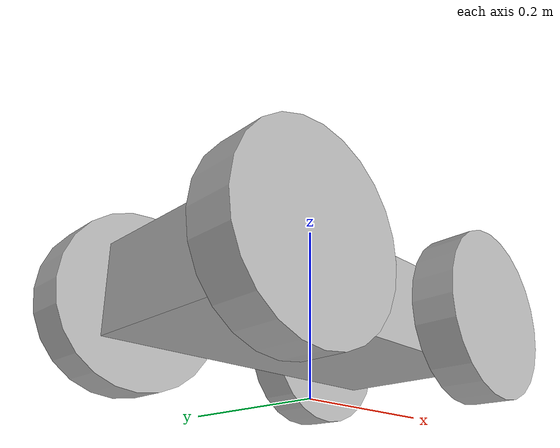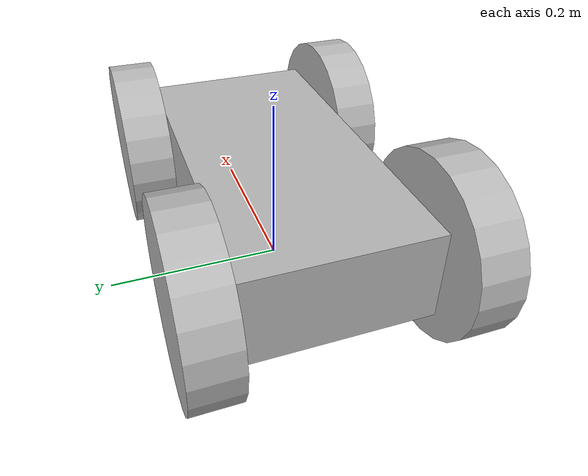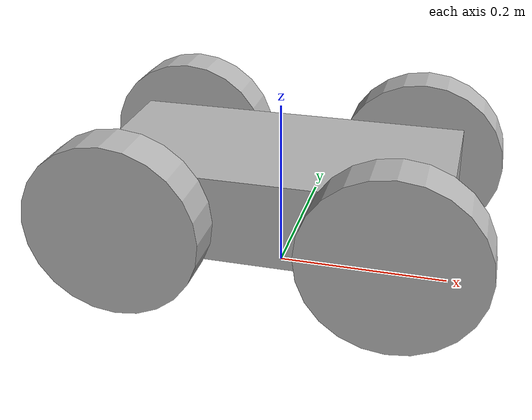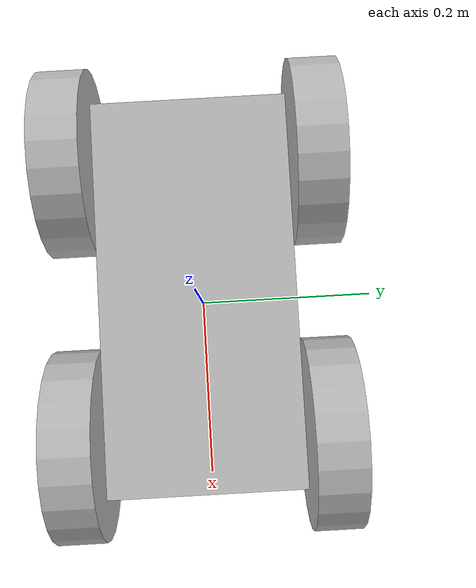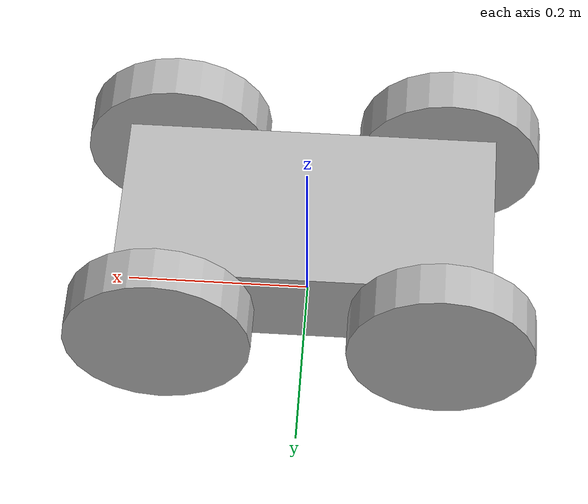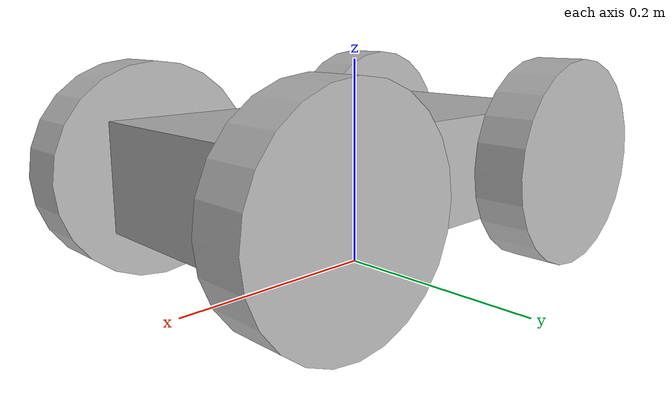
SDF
<?xml version='1.0'?>
<sdf version='1.4'>
  <model name="my_robot">
    <static>false</static>

      <!-- Create Box Of Robot Chasis -->
      <link name='chassis'>
        <pose>0 0 .1 0 0 0</pose>

        <collision name='collision'>
          <geometry>
            <box>
              <size>.4 .2 .1</size>
            </box>
          </geometry>
        </collision>

        <visual name='visual'>
          <geometry>
            <box>
              <size>.4 .2 .1</size>
            </box>
          </geometry>
        </visual>

      </link>

      <!-- Left Wheel -->
      <link name="left_wheel">
        <pose>0.15 0.13 0.1 0 1.5707 1.5707</pose>
        <collision name="collision">
          <geometry>
            <cylinder>
              <radius>.1</radius>
              <length>.05</length>
            </cylinder>
          </geometry>
        </collision>
        <visual name="visual">
          <geometry>
            <cylinder>
              <radius>.1</radius>
              <length>.05</length>
            </cylinder>
          </geometry>
        </visual>
      </link>

      <!-- Right Wheel -->
      <link name="right_wheel">
        <pose>0.15 -0.13 0.1 0 1.5707 1.5707</pose>
        <collision name="collision">
          <geometry>
            <cylinder>
              <radius>.1</radius>
              <length>.05</length>
            </cylinder>
          </geometry>
        </collision>
        <visual name="visual">
          <geometry>
            <cylinder>
              <radius>.1</radius>
              <length>.05</length>
            </cylinder>
          </geometry>
        </visual>
      </link>

      <!-- Left Wheel 2 -->
      <link name="left_wheel_2">
        <pose>-0.15 0.13 0.1 0 1.5707 1.5707</pose>
        <collision name="collision">
          <geometry>
            <cylinder>
              <radius>.1</radius>
              <length>.05</length>
            </cylinder>
          </geometry>
        </collision>
        <visual name="visual">
          <geometry>
            <cylinder>
              <radius>.1</radius>
              <length>.05</length>
            </cylinder>
          </geometry>
        </visual>
      </link>

      <!-- Right Wheel 2 -->
      <link name="right_wheel_2">
        <pose>-0.15 -0.13 0.1 0 1.5707 1.5707</pose>
        <collision name="collision">
          <geometry>
            <cylinder>
              <radius>.1</radius>
              <length>.05</length>
            </cylinder>
          </geometry>
        </collision>
        <visual name="visual">
          <geometry>
            <cylinder>
              <radius>.1</radius>
              <length>.05</length>
            </cylinder>
          </geometry>
        </visual>
      </link>

      <!-- Let Wheel Revolute Joint -->
      <joint type="revolute" name="left_wheel_hinge">
        <pose>0 0 -0.03 0 0 0</pose>
        <child>left_wheel</child>
        <parent>chassis</parent>
        <axis>
          <xyz>0 1 0</xyz>
        </axis>
      </joint>

      <!-- Right Wheel Revolute Joint -->
      <joint type="revolute" name="right_wheel_hinge">
        <pose>0 0 0.03 0 0 0</pose>
        <child>right_wheel</child>
        <parent>chassis</parent>
        <axis>
          <xyz>0 1 0</xyz>
        </axis>
      </joint>

      <!-- Let Wheel Revolute Joint 2 -->
      <joint type="revolute" name="left_wheel_2_hinge">
        <pose>0 0 -0.03 0 0 0</pose>
        <child>left_wheel_2</child>
        <parent>chassis</parent>
        <axis>
          <xyz>0 1 0</xyz>
        </axis>
      </joint>

      <!-- Right Wheel Revolute Joint 2 -->
      <joint type="revolute" name="right_wheel_2_hinge">
        <pose>0 0 0.03 0 0 0</pose>
        <child>right_wheel_2</child>
        <parent>chassis</parent>
        <axis>
          <xyz>0 1 0</xyz>
        </axis>
      </joint>

  </model>

</sdf>
